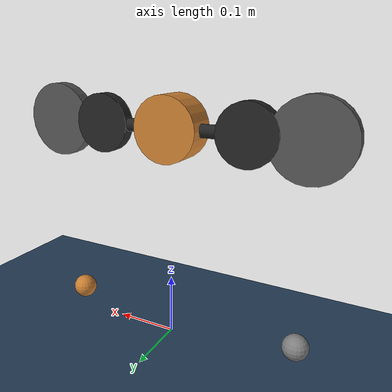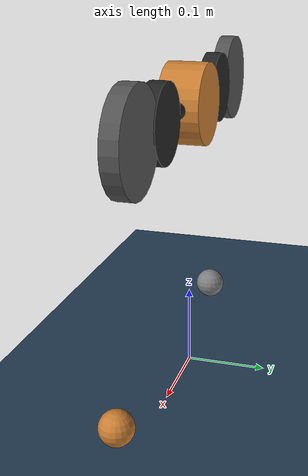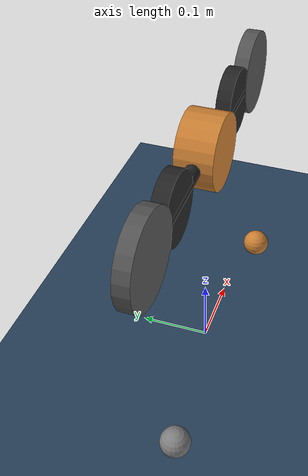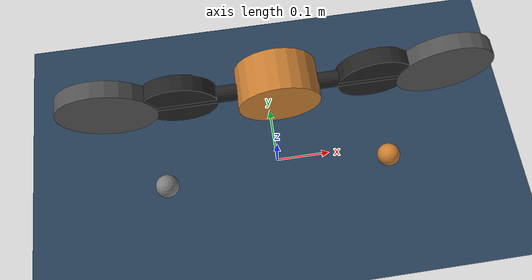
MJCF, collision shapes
<mujoco model="HAL">
    <compiler angle="radian" coordinate="local" inertiafromgeom="true" settotalmass="5"/>

    <default>
        <joint armature=".005" damping=".5"/>
        <position forcerange="-23.7 23.7" inheritrange="1" kp="35"/>
        <!-- set conaffinity to 1 to enable collision between body and floor;
             set both conaffinity and contype to 1 to enable full collision.
        -->
        <geom contype="0" conaffinity="0" condim="3" friction=".8 .02 .01"/>
        <default class="foot">
          <geom type="sphere" size="0.021"  pos="0 -0.005 -0.15" solimp="0.9 .95 0.023" contype="0" conaffinity="1"/>
        </default>
    </default>

    <option gravity="0 0 -9.81" timestep="0.004">
        <flag eulerdamp="disable"/>
    </option>

    <asset>
        <mesh name="thigh_mesh" file="meshes/thigh.stl" scale="0.001 0.001 0.001"/>
        <mesh name="shin_mesh" file="meshes/shin.stl" scale="0.001 0.001 0.001"/>

        <texture type="skybox" builtin="gradient" rgb1=".3 .5 .7" rgb2="0 0 0" width="32" height="512"/>

        <texture name="body" type="cube" builtin="flat" mark="cross" width="128" height="128" rgb1="0.8 0.6 0.4" rgb2="0.8 0.6 0.4" markrgb="1 1 1" random="0.01"/>
        <material name="body" texture="body" texuniform="true" rgba="0.8 0.6 .4 1"/>

        <texture name="grid" type="2d" builtin="checker" width="512" height="512" rgb1=".1 .2 .3" rgb2=".2 .3 .4" mark="edge" markrgb=".8 .8 .8"/>
        <material name="grid" texture="grid" texrepeat="5 5" texuniform="true" reflectance="0.2"/>
    </asset>

    <worldbody>
        <light pos="0 0 1.5" dir="0 0 -1" directional="true"/>

        <light name="spotlight" mode="targetbodycom" target="torso" diffuse=".8 .8 .8" specular="0.3 0.3 0.3" pos="0 -6 4" cutoff="30"/>
        <geom name="floor" conaffinity="0" contype="1" condim="3" material="grid" pos="0 0 0" size="10 10 10" type="plane"/>

        <body name="torso" pos="0 0 .345">
            <camera name="track" mode="trackcom" pos="0 -2 0.1" xyaxes="1 0 0 0 0 1"/>
            <joint armature="0" axis="1 0 0" damping="0" limited="false" name="rootx" pos="0 0 0" stiffness="0" type="slide"/>
            <joint armature="0" axis="0 0 1" damping="0" limited="false" name="rootz" pos="0 0 0" stiffness="0" type="slide"/>
            <joint armature="0" axis="0 1 0" damping="0" limited="false" name="rooty" pos="0 0 0" stiffness="0" type="hinge"/>

            <geom quat="0 0 0.7071068 0.7071068" type="cylinder" name="front_torso_center_geom" mass="0.6" size="0.05 0.025" pos="0 0 0"  rgba="0.8 0.5 0.2 1"/>

            <site name="imu" pos="0 0 0" group="5"/>
            <body name="front_torso" pos="0 0 0">
                <joint name="spine_joint" damping="0.1" type="hinge" axis="0 1 0" pos="0 0 0" range="-1.5 1.5" frictionloss="0.3"/>
                <geom fromto="0 0 0 .195586 0 0" rgba="0.141 0.141 0.141 1" name="front_torso_geom" size="0.01" type="capsule"/>
                <geom quat="0 0 0.7071068 0.7071068" rgba="0.141 0.141 0.141 1" type="cylinder" mass="0.5" size="0.046 0.01" pos="0.119488 0.001 0" friction="1.0 .1 .1"/>

                <body name="fthigh" pos=".195586 0 0">
                    <joint axis="0 1 0" damping="0.1" name="fthigh_joint" pos="0 0 0" range="-1.57 1.57" type="hinge" frictionloss="0.3"/>
                    <geom quat="0 0 0.7071068 0.7071068" rgba="0.329 0.329 0.329 1" name="fthigh_pully_geom" type="cylinder" mass="0.15" size="0.0585 0.01" pos="0.01 0 0"/>
                    <geom quat="0 0 0.7071068 0.7071068" rgba="0.329 0.329 0.329 1" name="fthigh_geom" pos="0.01 -0.02 0" type="mesh" mesh="thigh_mesh" friction="1.0 .1 .1"/>

                    <body name="fshin" pos="0.01 -0.02 -0.175026">
                        <joint axis="0 1 0" damping="0.1" name="fshin_joint" pos="0 0 0" range="-2.8 2.8" type="hinge" frictionloss="0.3"/>
                        <geom quat="0 0 0.7071068 0.7071068" name="fshin_geom" pos="0 0 0.175026" rgba="0.51 0.51 0.51 1" type="mesh" mesh="shin_mesh" friction="2.5 .1 .1"/>
                        <geom name="ffoot" class="foot" rgba="0.8 0.5 0.2 1"/>  <!-- set front foot to yellow to identify front vs back -->
                        <site name="ffoot" pos="0 -0.005 -0.15" group="5"/>
                    </body>

                </body>
            </body>

            <body name="back_torso" pos="0 0 0">
                <geom fromto="-.195586 0 0 0 0 0" rgba="0.141 0.141 0.141 1" name="back_torso_geom" size="0.01" type="capsule"/>
                <geom quat="0 0 0.7071068 0.7071068" rgba="0.141 0.141 0.141 1" type="cylinder" mass="0.5" size="0.046 0.01" pos="-0.119488 0.001 0"/>

                <body name="bthigh" pos="-.195586 0 0">
                    <joint axis="0 1 0" damping="0.1" name="bthigh_joint" pos="0 0 0" range="-1.57 1.57" type="hinge" frictionloss="0.3"/>
                    <geom quat="0 0 0.7071068 0.7071068" rgba="0.329 0.329 0.329 1" name="bthigh_pully_geom" type="cylinder" mass="0.15" size="0.0585 0.01" pos="-0.01 0 0" />
                    <geom quat="0 0 0.7071068 0.7071068" rgba="0.329 0.329 0.329 1" name="bthigh_geom" pos="-0.01 -0.02 0" type="mesh" mesh="thigh_mesh" friction="1.0 .1 .1"/>

                    <body name="bshin" pos="-0.01 -0.02 -0.175026">
                        <joint axis="0 1 0" damping="0.1" name="bshin_joint" pos="0 0 0" range="-2.8 2.8" type="hinge" frictionloss="0.3"/>
                        <geom quat="0 0 0.7071068 0.7071068" name="bshin_geom" pos="0 0 0.175026" rgba="0.51 0.51 0.51 1" type="mesh" mesh="shin_mesh" friction="2.5 .1 .1"/>
                        <geom name="bfoot" class="foot"/>
                        <site name="bfoot" pos="0 -0.005 -0.15" group="5"/>
                    </body>

                </body>
            </body>

        </body>
    </worldbody>

    <actuator>
        <position joint="spine_joint" name="spine"/>
        <position joint="fthigh_joint" name="fthigh"/>
        <position joint="fshin_joint" name="fshin"/>
        <position joint="bthigh_joint" name="bthigh"/>
        <position joint="bshin_joint" name="bshin"/>
    </actuator>

    <sensor>
        <gyro site="imu" name="gyro"/>
        <velocimeter site="imu" name="local_linvel"/>
        <accelerometer site="imu" name="accelerometer"/>
        <framepos objtype="site" objname="imu" name="position"/>
        <framezaxis objtype="site" objname="imu" name="upvector"/>
        <framexaxis objtype="site" objname="imu" name="forwardvector"/>
        <framelinvel objtype="site" objname="imu" name="global_linvel"/>
        <frameangvel objtype="site" objname="imu" name="global_angvel"/>
        <framequat objtype="site" objname="imu" name="orientation"/>
        <framelinvel objtype="site" objname="ffoot" name="ffoot_global_linvel"/>
        <framepos objtype="site" objname="ffoot" name="ffoot_pos" reftype="geom" refname="front_torso_center_geom"/>  <!-- check if this refname works -->
        <framelinvel objtype="site" objname="bfoot" name="bfoot_global_linvel"/>
        <framepos objtype="site" objname="bfoot" name="bfoot_pos" reftype="geom" refname="front_torso_center_geom"/>  <!-- check if this refname works -->
    </sensor>

  <keyframe>
    <key name="home" qpos="0 0 0 0 0.51 -1.05 0.51 -1.05" ctrl="0 0.51 -1.05 0.51 -1.05"/>  <!-- resets the model to the home position -->
  </keyframe>

</mujoco>
